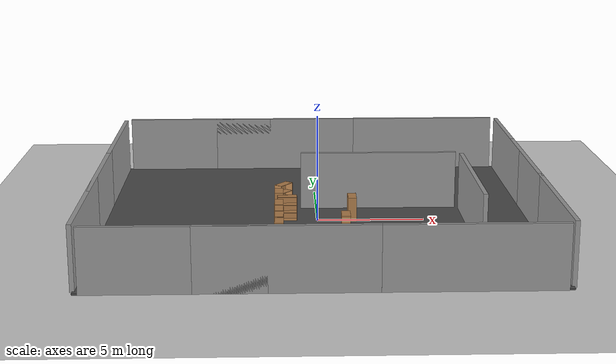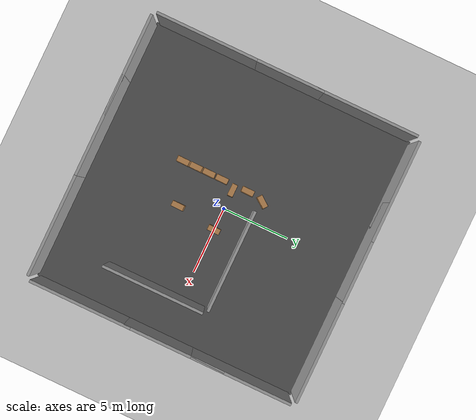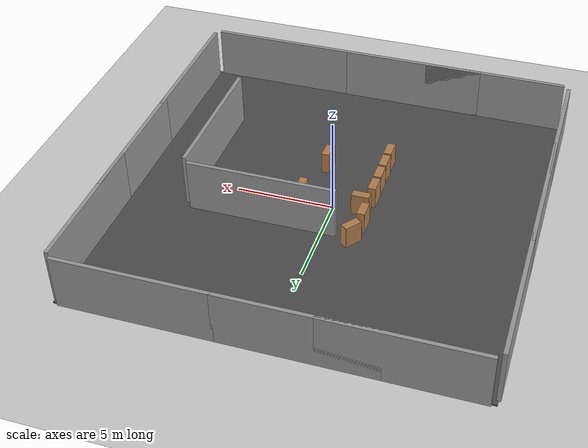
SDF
<sdf version="1.7">
 <world name="default">
  <light name="sun" type="directional">
   <pose>0 0 10 0 -0 0</pose>
   <diffuse>0.8 0.8 0.8 1</diffuse>
   <specular>0.2 0.2 0.2 1</specular>
   <attenuation>
    <range>1000</range>
    <constant>0.9</constant>
    <linear>0.01</linear>
    <quadratic>0.001</quadratic>
   </attenuation>
   <direction>-0.5 0.1 -0.9</direction>
   <spot><inner_angle>0</inner_angle><outer_angle>0</outer_angle><falloff>0</falloff></spot>
  </light>
  <model name="ground_plane">
   <static>1</static>
   <link name="link">
    <collision name="collision">
     <geometry><plane><normal>0 0 1</normal><size>100 100</size></plane></geometry>
     <surface><friction><ode><mu>100</mu><mu2>50</mu2></ode></friction></surface>
    </collision>
    <visual name="visual">
     <cast_shadows>0</cast_shadows>
     <geometry><plane><normal>0 0 1</normal><size>100 100</size></plane></geometry>
     <material>
      <script><uri>file://media/materials/scripts/gazebo.material</uri><name>Gazebo/Grey</name></script>
     </material>
    </visual>
   </link>
  </model>
  <gravity>0 0 -9.8</gravity>
  <magnetic_field>6e-06 2.3e-05 -4.2e-05</magnetic_field>
  <atmosphere type="adiabatic"/>
  <physics name="default_physics" default="0" type="ode">
   <max_step_size>0.001</max_step_size>
   <real_time_factor>1</real_time_factor>
   <real_time_update_rate>1000</real_time_update_rate>
  </physics>
  <scene><ambient>0.4 0.4 0.4 1</ambient><background>0.7 0.7 0.7 1</background><shadows>1</shadows></scene>
  <audio><device>default</device></audio>
  <spherical_coordinates>
   <surface_model>EARTH_WGS84</surface_model>
   <latitude_deg>47.8406</latitude_deg>
   <longitude_deg>10.6199</longitude_deg>
   <elevation>740</elevation>
   <heading_deg>180</heading_deg>
  </spherical_coordinates>
  <model name="bookshelf">
   <static>1</static>
   <link name="link">
    <inertial><mass>1</mass></inertial>
    <collision name="back">
     <pose>0 0.005 0.6 0 -0 0</pose>
     <geometry><box><size>0.9 0.01 1.2</size></box></geometry>
    </collision>
    <visual name="visual1">
     <pose>0 0.005 0.6 0 -0 0</pose>
     <geometry><box><size>0.9 0.01 1.2</size></box></geometry>
     <material>
      <script><uri>file://media/materials/scripts/gazebo.material</uri><name>Gazebo/Wood</name></script>
     </material>
    </visual>
    <collision name="left_side">
     <pose>0.45 -0.195 0.6 0 -0 0</pose>
     <geometry><box><size>0.02 0.4 1.2</size></box></geometry>
    </collision>
    <visual name="visual2">
     <pose>0.45 -0.195 0.6 0 -0 0</pose>
     <geometry><box><size>0.02 0.4 1.2</size></box></geometry>
     <material>
      <script><uri>file://media/materials/scripts/gazebo.material</uri><name>Gazebo/Wood</name></script>
     </material>
    </visual>
    <collision name="right_side">
     <pose>-0.45 -0.195 0.6 0 -0 0</pose>
     <geometry><box><size>0.02 0.4 1.2</size></box></geometry>
    </collision>
    <visual name="visual3">
     <pose>-0.45 -0.195 0.6 0 -0 0</pose>
     <geometry><box><size>0.02 0.4 1.2</size></box></geometry>
     <material>
      <script><uri>file://media/materials/scripts/gazebo.material</uri><name>Gazebo/Wood</name></script>
     </material>
    </visual>
    <collision name="bottom">
     <pose>0 -0.195 0.03 0 -0 0</pose>
     <geometry><box><size>0.88 0.4 0.06</size></box></geometry>
    </collision>
    <visual name="visual4">
     <pose>0 -0.195 0.03 0 -0 0</pose>
     <geometry><box><size>0.88 0.4 0.06</size></box></geometry>
     <material>
      <script><uri>file://media/materials/scripts/gazebo.material</uri><name>Gazebo/Wood</name></script>
     </material>
    </visual>
    <collision name="top">
     <pose>0 -0.195 1.19 0 -0 0</pose>
     <geometry><box><size>0.88 0.4 0.02</size></box></geometry>
    </collision>
    <visual name="visual5">
     <pose>0 -0.195 1.19 0 -0 0</pose>
     <geometry><box><size>0.88 0.4 0.02</size></box></geometry>
     <material>
      <script><uri>file://media/materials/scripts/gazebo.material</uri><name>Gazebo/Wood</name></script>
     </material>
    </visual>
    <collision name="low_shelf">
     <pose>0 -0.195 0.43 0 -0 0</pose>
     <geometry><box><size>0.88 0.4 0.02</size></box></geometry>
    </collision>
    <visual name="visual6">
     <pose>0 -0.195 0.43 0 -0 0</pose>
     <geometry><box><size>0.88 0.4 0.02</size></box></geometry>
     <material>
      <script><uri>file://media/materials/scripts/gazebo.material</uri><name>Gazebo/Wood</name></script>
     </material>
    </visual>
    <collision name="high_shelf">
     <pose>0 -0.195 0.8 0 -0 0</pose>
     <geometry><box><size>0.88 0.4 0.02</size></box></geometry>
    </collision>
    <visual name="visual7">
     <pose>0 -0.195 0.8 0 -0 0</pose>
     <geometry><box><size>0.88 0.4 0.02</size></box></geometry>
     <material>
      <script><uri>file://media/materials/scripts/gazebo.material</uri><name>Gazebo/Wood</name></script>
     </material>
    </visual>
   </link>
   <pose>-1.41887 0.189391 0 0 -0 0</pose>
  </model>
  <model name="bookshelf_clone">
   <static>1</static>
   <link name="link">
    <inertial><mass>1</mass></inertial>
    <collision name="back">
     <pose>0 0.005 0.6 0 -0 0</pose>
     <geometry><box><size>0.9 0.01 1.2</size></box></geometry>
    </collision>
    <visual name="visual1">
     <pose>0 0.005 0.6 0 -0 0</pose>
     <geometry><box><size>0.9 0.01 1.2</size></box></geometry>
     <material>
      <script><uri>file://media/materials/scripts/gazebo.material</uri><name>Gazebo/Wood</name></script>
     </material>
    </visual>
    <collision name="left_side">
     <pose>0.45 -0.195 0.6 0 -0 0</pose>
     <geometry><box><size>0.02 0.4 1.2</size></box></geometry>
    </collision>
    <visual name="visual2">
     <pose>0.45 -0.195 0.6 0 -0 0</pose>
     <geometry><box><size>0.02 0.4 1.2</size></box></geometry>
     <material>
      <script><uri>file://media/materials/scripts/gazebo.material</uri><name>Gazebo/Wood</name></script>
     </material>
    </visual>
    <collision name="right_side">
     <pose>-0.45 -0.195 0.6 0 -0 0</pose>
     <geometry><box><size>0.02 0.4 1.2</size></box></geometry>
    </collision>
    <visual name="visual3">
     <pose>-0.45 -0.195 0.6 0 -0 0</pose>
     <geometry><box><size>0.02 0.4 1.2</size></box></geometry>
     <material>
      <script><uri>file://media/materials/scripts/gazebo.material</uri><name>Gazebo/Wood</name></script>
     </material>
    </visual>
    <collision name="bottom">
     <pose>0 -0.195 0.03 0 -0 0</pose>
     <geometry><box><size>0.88 0.4 0.06</size></box></geometry>
    </collision>
    <visual name="visual4">
     <pose>0 -0.195 0.03 0 -0 0</pose>
     <geometry><box><size>0.88 0.4 0.06</size></box></geometry>
     <material>
      <script><uri>file://media/materials/scripts/gazebo.material</uri><name>Gazebo/Wood</name></script>
     </material>
    </visual>
    <collision name="top">
     <pose>0 -0.195 1.19 0 -0 0</pose>
     <geometry><box><size>0.88 0.4 0.02</size></box></geometry>
    </collision>
    <visual name="visual5">
     <pose>0 -0.195 1.19 0 -0 0</pose>
     <geometry><box><size>0.88 0.4 0.02</size></box></geometry>
     <material>
      <script><uri>file://media/materials/scripts/gazebo.material</uri><name>Gazebo/Wood</name></script>
     </material>
    </visual>
    <collision name="low_shelf">
     <pose>0 -0.195 0.43 0 -0 0</pose>
     <geometry><box><size>0.88 0.4 0.02</size></box></geometry>
    </collision>
    <visual name="visual6">
     <pose>0 -0.195 0.43 0 -0 0</pose>
     <geometry><box><size>0.88 0.4 0.02</size></box></geometry>
     <material>
      <script><uri>file://media/materials/scripts/gazebo.material</uri><name>Gazebo/Wood</name></script>
     </material>
    </visual>
    <collision name="high_shelf">
     <pose>0 -0.195 0.8 0 -0 0</pose>
     <geometry><box><size>0.88 0.4 0.02</size></box></geometry>
    </collision>
    <visual name="visual7">
     <pose>0 -0.195 0.8 0 -0 0</pose>
     <geometry><box><size>0.88 0.4 0.02</size></box></geometry>
     <material>
      <script><uri>file://media/materials/scripts/gazebo.material</uri><name>Gazebo/Wood</name></script>
     </material>
    </visual>
   </link>
   <pose>-2 -1 0 0 -0 1.55933</pose>
  </model>
  <model name="bookshelf_clone_0">
   <static>1</static>
   <link name="link">
    <inertial><mass>1</mass></inertial>
    <collision name="back">
     <pose>0 0.005 0.6 0 -0 0</pose>
     <geometry><box><size>0.9 0.01 1.2</size></box></geometry>
    </collision>
    <visual name="visual1">
     <pose>0 0.005 0.6 0 -0 0</pose>
     <geometry><box><size>0.9 0.01 1.2</size></box></geometry>
     <material>
      <script><uri>file://media/materials/scripts/gazebo.material</uri><name>Gazebo/Wood</name></script>
     </material>
    </visual>
    <collision name="left_side">
     <pose>0.45 -0.195 0.6 0 -0 0</pose>
     <geometry><box><size>0.02 0.4 1.2</size></box></geometry>
    </collision>
    <visual name="visual2">
     <pose>0.45 -0.195 0.6 0 -0 0</pose>
     <geometry><box><size>0.02 0.4 1.2</size></box></geometry>
     <material>
      <script><uri>file://media/materials/scripts/gazebo.material</uri><name>Gazebo/Wood</name></script>
     </material>
    </visual>
    <collision name="right_side">
     <pose>-0.45 -0.195 0.6 0 -0 0</pose>
     <geometry><box><size>0.02 0.4 1.2</size></box></geometry>
    </collision>
    <visual name="visual3">
     <pose>-0.45 -0.195 0.6 0 -0 0</pose>
     <geometry><box><size>0.02 0.4 1.2</size></box></geometry>
     <material>
      <script><uri>file://media/materials/scripts/gazebo.material</uri><name>Gazebo/Wood</name></script>
     </material>
    </visual>
    <collision name="bottom">
     <pose>0 -0.195 0.03 0 -0 0</pose>
     <geometry><box><size>0.88 0.4 0.06</size></box></geometry>
    </collision>
    <visual name="visual4">
     <pose>0 -0.195 0.03 0 -0 0</pose>
     <geometry><box><size>0.88 0.4 0.06</size></box></geometry>
     <material>
      <script><uri>file://media/materials/scripts/gazebo.material</uri><name>Gazebo/Wood</name></script>
     </material>
    </visual>
    <collision name="top">
     <pose>0 -0.195 1.19 0 -0 0</pose>
     <geometry><box><size>0.88 0.4 0.02</size></box></geometry>
    </collision>
    <visual name="visual5">
     <pose>0 -0.195 1.19 0 -0 0</pose>
     <geometry><box><size>0.88 0.4 0.02</size></box></geometry>
     <material>
      <script><uri>file://media/materials/scripts/gazebo.material</uri><name>Gazebo/Wood</name></script>
     </material>
    </visual>
    <collision name="low_shelf">
     <pose>0 -0.195 0.43 0 -0 0</pose>
     <geometry><box><size>0.88 0.4 0.02</size></box></geometry>
    </collision>
    <visual name="visual6">
     <pose>0 -0.195 0.43 0 -0 0</pose>
     <geometry><box><size>0.88 0.4 0.02</size></box></geometry>
     <material>
      <script><uri>file://media/materials/scripts/gazebo.material</uri><name>Gazebo/Wood</name></script>
     </material>
    </visual>
    <collision name="high_shelf">
     <pose>0 -0.195 0.8 0 -0 0</pose>
     <geometry><box><size>0.88 0.4 0.02</size></box></geometry>
    </collision>
    <visual name="visual7">
     <pose>0 -0.195 0.8 0 -0 0</pose>
     <geometry><box><size>0.88 0.4 0.02</size></box></geometry>
     <material>
      <script><uri>file://media/materials/scripts/gazebo.material</uri><name>Gazebo/Wood</name></script>
     </material>
    </visual>
   </link>
   <pose>-2 -2 0 0 -0 1.55933</pose>
  </model>
  <model name="bookshelf_clone_1">
   <static>1</static>
   <link name="link">
    <inertial><mass>1</mass></inertial>
    <collision name="back">
     <pose>0 0.005 0.6 0 -0 0</pose>
     <geometry><box><size>0.9 0.01 1.2</size></box></geometry>
    </collision>
    <visual name="visual1">
     <pose>0 0.005 0.6 0 -0 0</pose>
     <geometry><box><size>0.9 0.01 1.2</size></box></geometry>
     <material>
      <script><uri>file://media/materials/scripts/gazebo.material</uri><name>Gazebo/Wood</name></script>
     </material>
    </visual>
    <collision name="left_side">
     <pose>0.45 -0.195 0.6 0 -0 0</pose>
     <geometry><box><size>0.02 0.4 1.2</size></box></geometry>
    </collision>
    <visual name="visual2">
     <pose>0.45 -0.195 0.6 0 -0 0</pose>
     <geometry><box><size>0.02 0.4 1.2</size></box></geometry>
     <material>
      <script><uri>file://media/materials/scripts/gazebo.material</uri><name>Gazebo/Wood</name></script>
     </material>
    </visual>
    <collision name="right_side">
     <pose>-0.45 -0.195 0.6 0 -0 0</pose>
     <geometry><box><size>0.02 0.4 1.2</size></box></geometry>
    </collision>
    <visual name="visual3">
     <pose>-0.45 -0.195 0.6 0 -0 0</pose>
     <geometry><box><size>0.02 0.4 1.2</size></box></geometry>
     <material>
      <script><uri>file://media/materials/scripts/gazebo.material</uri><name>Gazebo/Wood</name></script>
     </material>
    </visual>
    <collision name="bottom">
     <pose>0 -0.195 0.03 0 -0 0</pose>
     <geometry><box><size>0.88 0.4 0.06</size></box></geometry>
    </collision>
    <visual name="visual4">
     <pose>0 -0.195 0.03 0 -0 0</pose>
     <geometry><box><size>0.88 0.4 0.06</size></box></geometry>
     <material>
      <script><uri>file://media/materials/scripts/gazebo.material</uri><name>Gazebo/Wood</name></script>
     </material>
    </visual>
    <collision name="top">
     <pose>0 -0.195 1.19 0 -0 0</pose>
     <geometry><box><size>0.88 0.4 0.02</size></box></geometry>
    </collision>
    <visual name="visual5">
     <pose>0 -0.195 1.19 0 -0 0</pose>
     <geometry><box><size>0.88 0.4 0.02</size></box></geometry>
     <material>
      <script><uri>file://media/materials/scripts/gazebo.material</uri><name>Gazebo/Wood</name></script>
     </material>
    </visual>
    <collision name="low_shelf">
     <pose>0 -0.195 0.43 0 -0 0</pose>
     <geometry><box><size>0.88 0.4 0.02</size></box></geometry>
    </collision>
    <visual name="visual6">
     <pose>0 -0.195 0.43 0 -0 0</pose>
     <geometry><box><size>0.88 0.4 0.02</size></box></geometry>
     <material>
      <script><uri>file://media/materials/scripts/gazebo.material</uri><name>Gazebo/Wood</name></script>
     </material>
    </visual>
    <collision name="high_shelf">
     <pose>0 -0.195 0.8 0 -0 0</pose>
     <geometry><box><size>0.88 0.4 0.02</size></box></geometry>
    </collision>
    <visual name="visual7">
     <pose>0 -0.195 0.8 0 -0 0</pose>
     <geometry><box><size>0.88 0.4 0.02</size></box></geometry>
     <material>
      <script><uri>file://media/materials/scripts/gazebo.material</uri><name>Gazebo/Wood</name></script>
     </material>
    </visual>
   </link>
   <pose>-2 -3 0 0 -0 1.55933</pose>
  </model>
  <model name="bookshelf_clone_2">
   <static>1</static>
   <link name="link">
    <inertial><mass>1</mass></inertial>
    <collision name="back">
     <pose>0 0.005 0.6 0 -0 0</pose>
     <geometry><box><size>0.9 0.01 1.2</size></box></geometry>
    </collision>
    <visual name="visual1">
     <pose>0 0.005 0.6 0 -0 0</pose>
     <geometry><box><size>0.9 0.01 1.2</size></box></geometry>
     <material>
      <script><uri>file://media/materials/scripts/gazebo.material</uri><name>Gazebo/Wood</name></script>
     </material>
    </visual>
    <collision name="left_side">
     <pose>0.45 -0.195 0.6 0 -0 0</pose>
     <geometry><box><size>0.02 0.4 1.2</size></box></geometry>
    </collision>
    <visual name="visual2">
     <pose>0.45 -0.195 0.6 0 -0 0</pose>
     <geometry><box><size>0.02 0.4 1.2</size></box></geometry>
     <material>
      <script><uri>file://media/materials/scripts/gazebo.material</uri><name>Gazebo/Wood</name></script>
     </material>
    </visual>
    <collision name="right_side">
     <pose>-0.45 -0.195 0.6 0 -0 0</pose>
     <geometry><box><size>0.02 0.4 1.2</size></box></geometry>
    </collision>
    <visual name="visual3">
     <pose>-0.45 -0.195 0.6 0 -0 0</pose>
     <geometry><box><size>0.02 0.4 1.2</size></box></geometry>
     <material>
      <script><uri>file://media/materials/scripts/gazebo.material</uri><name>Gazebo/Wood</name></script>
     </material>
    </visual>
    <collision name="bottom">
     <pose>0 -0.195 0.03 0 -0 0</pose>
     <geometry><box><size>0.88 0.4 0.06</size></box></geometry>
    </collision>
    <visual name="visual4">
     <pose>0 -0.195 0.03 0 -0 0</pose>
     <geometry><box><size>0.88 0.4 0.06</size></box></geometry>
     <material>
      <script><uri>file://media/materials/scripts/gazebo.material</uri><name>Gazebo/Wood</name></script>
     </material>
    </visual>
    <collision name="top">
     <pose>0 -0.195 1.19 0 -0 0</pose>
     <geometry><box><size>0.88 0.4 0.02</size></box></geometry>
    </collision>
    <visual name="visual5">
     <pose>0 -0.195 1.19 0 -0 0</pose>
     <geometry><box><size>0.88 0.4 0.02</size></box></geometry>
     <material>
      <script><uri>file://media/materials/scripts/gazebo.material</uri><name>Gazebo/Wood</name></script>
     </material>
    </visual>
    <collision name="low_shelf">
     <pose>0 -0.195 0.43 0 -0 0</pose>
     <geometry><box><size>0.88 0.4 0.02</size></box></geometry>
    </collision>
    <visual name="visual6">
     <pose>0 -0.195 0.43 0 -0 0</pose>
     <geometry><box><size>0.88 0.4 0.02</size></box></geometry>
     <material>
      <script><uri>file://media/materials/scripts/gazebo.material</uri><name>Gazebo/Wood</name></script>
     </material>
    </visual>
    <collision name="high_shelf">
     <pose>0 -0.195 0.8 0 -0 0</pose>
     <geometry><box><size>0.88 0.4 0.02</size></box></geometry>
    </collision>
    <visual name="visual7">
     <pose>0 -0.195 0.8 0 -0 0</pose>
     <geometry><box><size>0.88 0.4 0.02</size></box></geometry>
     <material>
      <script><uri>file://media/materials/scripts/gazebo.material</uri><name>Gazebo/Wood</name></script>
     </material>
    </visual>
   </link>
   <pose>1.44053 0 0 0 -0 1.55933</pose>
  </model>
  <model name="bookshelf_clone_4">
   <static>1</static>
   <link name="link">
    <inertial><mass>1</mass></inertial>
    <collision name="back">
     <pose>0 0.005 0.6 0 -0 0</pose>
     <geometry><box><size>0.9 0.01 1.2</size></box></geometry>
    </collision>
    <visual name="visual1">
     <pose>0 0.005 0.6 0 -0 0</pose>
     <geometry><box><size>0.9 0.01 1.2</size></box></geometry>
     <material>
      <script><uri>file://media/materials/scripts/gazebo.material</uri><name>Gazebo/Wood</name></script>
     </material>
    </visual>
    <collision name="left_side">
     <pose>0.45 -0.195 0.6 0 -0 0</pose>
     <geometry><box><size>0.02 0.4 1.2</size></box></geometry>
    </collision>
    <visual name="visual2">
     <pose>0.45 -0.195 0.6 0 -0 0</pose>
     <geometry><box><size>0.02 0.4 1.2</size></box></geometry>
     <material>
      <script><uri>file://media/materials/scripts/gazebo.material</uri><name>Gazebo/Wood</name></script>
     </material>
    </visual>
    <collision name="right_side">
     <pose>-0.45 -0.195 0.6 0 -0 0</pose>
     <geometry><box><size>0.02 0.4 1.2</size></box></geometry>
    </collision>
    <visual name="visual3">
     <pose>-0.45 -0.195 0.6 0 -0 0</pose>
     <geometry><box><size>0.02 0.4 1.2</size></box></geometry>
     <material>
      <script><uri>file://media/materials/scripts/gazebo.material</uri><name>Gazebo/Wood</name></script>
     </material>
    </visual>
    <collision name="bottom">
     <pose>0 -0.195 0.03 0 -0 0</pose>
     <geometry><box><size>0.88 0.4 0.06</size></box></geometry>
    </collision>
    <visual name="visual4">
     <pose>0 -0.195 0.03 0 -0 0</pose>
     <geometry><box><size>0.88 0.4 0.06</size></box></geometry>
     <material>
      <script><uri>file://media/materials/scripts/gazebo.material</uri><name>Gazebo/Wood</name></script>
     </material>
    </visual>
    <collision name="top">
     <pose>0 -0.195 1.19 0 -0 0</pose>
     <geometry><box><size>0.88 0.4 0.02</size></box></geometry>
    </collision>
    <visual name="visual5">
     <pose>0 -0.195 1.19 0 -0 0</pose>
     <geometry><box><size>0.88 0.4 0.02</size></box></geometry>
     <material>
      <script><uri>file://media/materials/scripts/gazebo.material</uri><name>Gazebo/Wood</name></script>
     </material>
    </visual>
    <collision name="low_shelf">
     <pose>0 -0.195 0.43 0 -0 0</pose>
     <geometry><box><size>0.88 0.4 0.02</size></box></geometry>
    </collision>
    <visual name="visual6">
     <pose>0 -0.195 0.43 0 -0 0</pose>
     <geometry><box><size>0.88 0.4 0.02</size></box></geometry>
     <material>
      <script><uri>file://media/materials/scripts/gazebo.material</uri><name>Gazebo/Wood</name></script>
     </material>
    </visual>
    <collision name="high_shelf">
     <pose>0 -0.195 0.8 0 -0 0</pose>
     <geometry><box><size>0.88 0.4 0.02</size></box></geometry>
    </collision>
    <visual name="visual7">
     <pose>0 -0.195 0.8 0 -0 0</pose>
     <geometry><box><size>0.88 0.4 0.02</size></box></geometry>
     <material>
      <script><uri>file://media/materials/scripts/gazebo.material</uri><name>Gazebo/Wood</name></script>
     </material>
    </visual>
   </link>
   <pose>1 -3 0 0 -0 1.55933</pose>
  </model>
  <model name="bookshelf_clone_1_clone">
   <static>1</static>
   <link name="link">
    <inertial><mass>1</mass></inertial>
    <collision name="back">
     <pose>0 0.005 0.6 0 -0 0</pose>
     <geometry><box><size>0.9 0.01 1.2</size></box></geometry>
    </collision>
    <visual name="visual1">
     <pose>0 0.005 0.6 0 -0 0</pose>
     <geometry><box><size>0.9 0.01 1.2</size></box></geometry>
     <material>
      <script><uri>file://media/materials/scripts/gazebo.material</uri><name>Gazebo/Wood</name></script>
     </material>
    </visual>
    <collision name="left_side">
     <pose>0.45 -0.195 0.6 0 -0 0</pose>
     <geometry><box><size>0.02 0.4 1.2</size></box></geometry>
    </collision>
    <visual name="visual2">
     <pose>0.45 -0.195 0.6 0 -0 0</pose>
     <geometry><box><size>0.02 0.4 1.2</size></box></geometry>
     <material>
      <script><uri>file://media/materials/scripts/gazebo.material</uri><name>Gazebo/Wood</name></script>
     </material>
    </visual>
    <collision name="right_side">
     <pose>-0.45 -0.195 0.6 0 -0 0</pose>
     <geometry><box><size>0.02 0.4 1.2</size></box></geometry>
    </collision>
    <visual name="visual3">
     <pose>-0.45 -0.195 0.6 0 -0 0</pose>
     <geometry><box><size>0.02 0.4 1.2</size></box></geometry>
     <material>
      <script><uri>file://media/materials/scripts/gazebo.material</uri><name>Gazebo/Wood</name></script>
     </material>
    </visual>
    <collision name="bottom">
     <pose>0 -0.195 0.03 0 -0 0</pose>
     <geometry><box><size>0.88 0.4 0.06</size></box></geometry>
    </collision>
    <visual name="visual4">
     <pose>0 -0.195 0.03 0 -0 0</pose>
     <geometry><box><size>0.88 0.4 0.06</size></box></geometry>
     <material>
      <script><uri>file://media/materials/scripts/gazebo.material</uri><name>Gazebo/Wood</name></script>
     </material>
    </visual>
    <collision name="top">
     <pose>0 -0.195 1.19 0 -0 0</pose>
     <geometry><box><size>0.88 0.4 0.02</size></box></geometry>
    </collision>
    <visual name="visual5">
     <pose>0 -0.195 1.19 0 -0 0</pose>
     <geometry><box><size>0.88 0.4 0.02</size></box></geometry>
     <material>
      <script><uri>file://media/materials/scripts/gazebo.material</uri><name>Gazebo/Wood</name></script>
     </material>
    </visual>
    <collision name="low_shelf">
     <pose>0 -0.195 0.43 0 -0 0</pose>
     <geometry><box><size>0.88 0.4 0.02</size></box></geometry>
    </collision>
    <visual name="visual6">
     <pose>0 -0.195 0.43 0 -0 0</pose>
     <geometry><box><size>0.88 0.4 0.02</size></box></geometry>
     <material>
      <script><uri>file://media/materials/scripts/gazebo.material</uri><name>Gazebo/Wood</name></script>
     </material>
    </visual>
    <collision name="high_shelf">
     <pose>0 -0.195 0.8 0 -0 0</pose>
     <geometry><box><size>0.88 0.4 0.02</size></box></geometry>
    </collision>
    <visual name="visual7">
     <pose>0 -0.195 0.8 0 -0 0</pose>
     <geometry><box><size>0.88 0.4 0.02</size></box></geometry>
     <material>
      <script><uri>file://media/materials/scripts/gazebo.material</uri><name>Gazebo/Wood</name></script>
     </material>
    </visual>
   </link>
   <pose>-2 -4 0 0 -0 1.55933</pose>
  </model>
  <model name="bookshelf_clone_1_clone_0">
   <static>1</static>
   <link name="link">
    <inertial><mass>1</mass></inertial>
    <collision name="back">
     <pose>0 0.005 0.6 0 -0 0</pose>
     <geometry><box><size>0.9 0.01 1.2</size></box></geometry>
    </collision>
    <visual name="visual1">
     <pose>0 0.005 0.6 0 -0 0</pose>
     <geometry><box><size>0.9 0.01 1.2</size></box></geometry>
     <material>
      <script><uri>file://media/materials/scripts/gazebo.material</uri><name>Gazebo/Wood</name></script>
     </material>
    </visual>
    <collision name="left_side">
     <pose>0.45 -0.195 0.6 0 -0 0</pose>
     <geometry><box><size>0.02 0.4 1.2</size></box></geometry>
    </collision>
    <visual name="visual2">
     <pose>0.45 -0.195 0.6 0 -0 0</pose>
     <geometry><box><size>0.02 0.4 1.2</size></box></geometry>
     <material>
      <script><uri>file://media/materials/scripts/gazebo.material</uri><name>Gazebo/Wood</name></script>
     </material>
    </visual>
    <collision name="right_side">
     <pose>-0.45 -0.195 0.6 0 -0 0</pose>
     <geometry><box><size>0.02 0.4 1.2</size></box></geometry>
    </collision>
    <visual name="visual3">
     <pose>-0.45 -0.195 0.6 0 -0 0</pose>
     <geometry><box><size>0.02 0.4 1.2</size></box></geometry>
     <material>
      <script><uri>file://media/materials/scripts/gazebo.material</uri><name>Gazebo/Wood</name></script>
     </material>
    </visual>
    <collision name="bottom">
     <pose>0 -0.195 0.03 0 -0 0</pose>
     <geometry><box><size>0.88 0.4 0.06</size></box></geometry>
    </collision>
    <visual name="visual4">
     <pose>0 -0.195 0.03 0 -0 0</pose>
     <geometry><box><size>0.88 0.4 0.06</size></box></geometry>
     <material>
      <script><uri>file://media/materials/scripts/gazebo.material</uri><name>Gazebo/Wood</name></script>
     </material>
    </visual>
    <collision name="top">
     <pose>0 -0.195 1.19 0 -0 0</pose>
     <geometry><box><size>0.88 0.4 0.02</size></box></geometry>
    </collision>
    <visual name="visual5">
     <pose>0 -0.195 1.19 0 -0 0</pose>
     <geometry><box><size>0.88 0.4 0.02</size></box></geometry>
     <material>
      <script><uri>file://media/materials/scripts/gazebo.material</uri><name>Gazebo/Wood</name></script>
     </material>
    </visual>
    <collision name="low_shelf">
     <pose>0 -0.195 0.43 0 -0 0</pose>
     <geometry><box><size>0.88 0.4 0.02</size></box></geometry>
    </collision>
    <visual name="visual6">
     <pose>0 -0.195 0.43 0 -0 0</pose>
     <geometry><box><size>0.88 0.4 0.02</size></box></geometry>
     <material>
      <script><uri>file://media/materials/scripts/gazebo.material</uri><name>Gazebo/Wood</name></script>
     </material>
    </visual>
    <collision name="high_shelf">
     <pose>0 -0.195 0.8 0 -0 0</pose>
     <geometry><box><size>0.88 0.4 0.02</size></box></geometry>
    </collision>
    <visual name="visual7">
     <pose>0 -0.195 0.8 0 -0 0</pose>
     <geometry><box><size>0.88 0.4 0.02</size></box></geometry>
     <material>
      <script><uri>file://media/materials/scripts/gazebo.material</uri><name>Gazebo/Wood</name></script>
     </material>
    </visual>
   </link>
   <pose>-2 1 0 0 -0 1.55933</pose>
  </model>
  <model name="bookshelf_clone_1_clone_1">
   <static>1</static>
   <link name="link">
    <inertial><mass>1</mass></inertial>
    <collision name="back">
     <pose>0 0.005 0.6 0 -0 0</pose>
     <geometry><box><size>0.9 0.01 1.2</size></box></geometry>
    </collision>
    <visual name="visual1">
     <pose>0 0.005 0.6 0 -0 0</pose>
     <geometry><box><size>0.9 0.01 1.2</size></box></geometry>
     <material>
      <script><uri>file://media/materials/scripts/gazebo.material</uri><name>Gazebo/Wood</name></script>
     </material>
    </visual>
    <collision name="left_side">
     <pose>0.45 -0.195 0.6 0 -0 0</pose>
     <geometry><box><size>0.02 0.4 1.2</size></box></geometry>
    </collision>
    <visual name="visual2">
     <pose>0.45 -0.195 0.6 0 -0 0</pose>
     <geometry><box><size>0.02 0.4 1.2</size></box></geometry>
     <material>
      <script><uri>file://media/materials/scripts/gazebo.material</uri><name>Gazebo/Wood</name></script>
     </material>
    </visual>
    <collision name="right_side">
     <pose>-0.45 -0.195 0.6 0 -0 0</pose>
     <geometry><box><size>0.02 0.4 1.2</size></box></geometry>
    </collision>
    <visual name="visual3">
     <pose>-0.45 -0.195 0.6 0 -0 0</pose>
     <geometry><box><size>0.02 0.4 1.2</size></box></geometry>
     <material>
      <script><uri>file://media/materials/scripts/gazebo.material</uri><name>Gazebo/Wood</name></script>
     </material>
    </visual>
    <collision name="bottom">
     <pose>0 -0.195 0.03 0 -0 0</pose>
     <geometry><box><size>0.88 0.4 0.06</size></box></geometry>
    </collision>
    <visual name="visual4">
     <pose>0 -0.195 0.03 0 -0 0</pose>
     <geometry><box><size>0.88 0.4 0.06</size></box></geometry>
     <material>
      <script><uri>file://media/materials/scripts/gazebo.material</uri><name>Gazebo/Wood</name></script>
     </material>
    </visual>
    <collision name="top">
     <pose>0 -0.195 1.19 0 -0 0</pose>
     <geometry><box><size>0.88 0.4 0.02</size></box></geometry>
    </collision>
    <visual name="visual5">
     <pose>0 -0.195 1.19 0 -0 0</pose>
     <geometry><box><size>0.88 0.4 0.02</size></box></geometry>
     <material>
      <script><uri>file://media/materials/scripts/gazebo.material</uri><name>Gazebo/Wood</name></script>
     </material>
    </visual>
    <collision name="low_shelf">
     <pose>0 -0.195 0.43 0 -0 0</pose>
     <geometry><box><size>0.88 0.4 0.02</size></box></geometry>
    </collision>
    <visual name="visual6">
     <pose>0 -0.195 0.43 0 -0 0</pose>
     <geometry><box><size>0.88 0.4 0.02</size></box></geometry>
     <material>
      <script><uri>file://media/materials/scripts/gazebo.material</uri><name>Gazebo/Wood</name></script>
     </material>
    </visual>
    <collision name="high_shelf">
     <pose>0 -0.195 0.8 0 -0 0</pose>
     <geometry><box><size>0.88 0.4 0.02</size></box></geometry>
    </collision>
    <visual name="visual7">
     <pose>0 -0.195 0.8 0 -0 0</pose>
     <geometry><box><size>0.88 0.4 0.02</size></box></geometry>
     <material>
      <script><uri>file://media/materials/scripts/gazebo.material</uri><name>Gazebo/Wood</name></script>
     </material>
    </visual>
   </link>
   <pose>-1.73196 2.3534 0 0 -0 0.921911</pose>
  </model>
  <model name="grey_wall_0">
   <static>1</static>
   <link name="link">
    <pose>0 0 1.4 0 -0 0</pose>
    <collision name="collision"><geometry><box><size>7.5 0.2 2.8</size></box></geometry></collision>
    <visual name="visual">
     <cast_shadows>0</cast_shadows>
     <geometry><box><size>7.5 0.2 2.8</size></box></geometry>
     <material>
      <script>
       <uri>model://grey_wall/materials/scripts</uri>
       <uri>model://grey_wall/materials/textures</uri>
       <name>vrc/grey_wall</name>
      </script>
     </material>
    </visual>
   </link>
   <pose>3 2 0 0 -0 0</pose>
  </model>
  <model name="grey_wall_1">
   <static>1</static>
   <link name="link">
    <pose>0 0 1.4 0 -0 0</pose>
    <collision name="collision"><geometry><box><size>7.5 0.2 2.8</size></box></geometry></collision>
    <visual name="visual">
     <cast_shadows>0</cast_shadows>
     <geometry><box><size>7.5 0.2 2.8</size></box></geometry>
     <material>
      <script>
       <uri>model://grey_wall/materials/scripts</uri>
       <uri>model://grey_wall/materials/textures</uri>
       <name>vrc/grey_wall</name>
      </script>
     </material>
    </visual>
   </link>
   <pose>7 -2 0 0 0 -1.5708</pose>
  </model>
  <model name="grey_wall_2">
   <static>1</static>
   <link name="link">
    <pose>0 0 1.4 0 -0 0</pose>
    <collision name="collision"><geometry><box><size>7.5 0.2 2.8</size></box></geometry></collision>
    <visual name="visual">
     <cast_shadows>0</cast_shadows>
     <geometry><box><size>7.5 0.2 2.8</size></box></geometry>
     <material>
      <script>
       <uri>model://grey_wall/materials/scripts</uri>
       <uri>model://grey_wall/materials/textures</uri>
       <name>vrc/grey_wall</name>
      </script>
     </material>
    </visual>
   </link>
   <pose>6 -10 0 0 -0 0</pose>
  </model>
  <model name="grey_wall_1_clone">
   <static>1</static>
   <link name="link">
    <pose>0 0 1.4 0 -0 0</pose>
    <collision name="collision"><geometry><box><size>7.5 0.2 2.8</size></box></geometry></collision>
    <visual name="visual">
     <cast_shadows>0</cast_shadows>
     <geometry><box><size>7.5 0.2 2.8</size></box></geometry>
     <material>
      <script>
       <uri>model://grey_wall/materials/scripts</uri>
       <uri>model://grey_wall/materials/textures</uri>
       <name>vrc/grey_wall</name>
      </script>
     </material>
    </visual>
   </link>
   <pose>10 -6 0 0 0 -1.5708</pose>
  </model>
  <model name="grey_wall_1_clone_0">
   <static>1</static>
   <link name="link">
    <pose>0 0 1.4 0 -0 0</pose>
    <collision name="collision"><geometry><box><size>7.5 0.2 2.8</size></box></geometry></collision>
    <visual name="visual">
     <cast_shadows>0</cast_shadows>
     <geometry><box><size>7.5 0.2 2.8</size></box></geometry>
     <material>
      <script>
       <uri>model://grey_wall/materials/scripts</uri>
       <uri>model://grey_wall/materials/textures</uri>
       <name>vrc/grey_wall</name>
      </script>
     </material>
    </visual>
   </link>
   <pose>10 1 0 0 0 -1.5708</pose>
  </model>
  <model name="grey_wall_2_clone">
   <static>1</static>
   <link name="link">
    <pose>0 0 1.4 0 -0 0</pose>
    <collision name="collision"><geometry><box><size>7.5 0.2 2.8</size></box></geometry></collision>
    <visual name="visual">
     <cast_shadows>0</cast_shadows>
     <geometry><box><size>7.5 0.2 2.8</size></box></geometry>
     <material>
      <script>
       <uri>model://grey_wall/materials/scripts</uri>
       <uri>model://grey_wall/materials/textures</uri>
       <name>vrc/grey_wall</name>
      </script>
     </material>
    </visual>
   </link>
   <pose>-1.50047 -10 0 0 -0 0</pose>
  </model>
  <model name="grey_wall_1_clone_clone">
   <static>1</static>
   <link name="link">
    <pose>0 0 1.4 0 -0 0</pose>
    <collision name="collision"><geometry><box><size>7.5 0.2 2.8</size></box></geometry></collision>
    <visual name="visual">
     <cast_shadows>0</cast_shadows>
     <geometry><box><size>7.5 0.2 2.8</size></box></geometry>
     <material>
      <script>
       <uri>model://grey_wall/materials/scripts</uri>
       <uri>model://grey_wall/materials/textures</uri>
       <name>vrc/grey_wall</name>
      </script>
     </material>
    </visual>
   </link>
   <pose>10 6 0 0 0 -1.5708</pose>
  </model>
  <model name="grey_wall_2_clone_0">
   <static>1</static>
   <link name="link">
    <pose>0 0 1.4 0 -0 0</pose>
    <collision name="collision"><geometry><box><size>7.5 0.2 2.8</size></box></geometry></collision>
    <visual name="visual">
     <cast_shadows>0</cast_shadows>
     <geometry><box><size>7.5 0.2 2.8</size></box></geometry>
     <material>
      <script>
       <uri>model://grey_wall/materials/scripts</uri>
       <uri>model://grey_wall/materials/textures</uri>
       <name>vrc/grey_wall</name>
      </script>
     </material>
    </visual>
   </link>
   <pose>6 10 0 0 -0 0</pose>
  </model>
  <model name="grey_wall_2_clone_1">
   <static>1</static>
   <link name="link">
    <pose>0 0 1.4 0 -0 0</pose>
    <collision name="collision"><geometry><box><size>7.5 0.2 2.8</size></box></geometry></collision>
    <visual name="visual">
     <cast_shadows>0</cast_shadows>
     <geometry><box><size>7.5 0.2 2.8</size></box></geometry>
     <material>
      <script>
       <uri>model://grey_wall/materials/scripts</uri>
       <uri>model://grey_wall/materials/textures</uri>
       <name>vrc/grey_wall</name>
      </script>
     </material>
    </visual>
   </link>
   <pose>-1.40275 10 0 0 -0 0</pose>
  </model>
  <model name="grey_wall_1_clone_clone_0">
   <static>1</static>
   <link name="link">
    <pose>0 0 1.4 0 -0 0</pose>
    <collision name="collision"><geometry><box><size>7.5 0.2 2.8</size></box></geometry></collision>
    <visual name="visual">
     <cast_shadows>0</cast_shadows>
     <geometry><box><size>7.5 0.2 2.8</size></box></geometry>
     <material>
      <script>
       <uri>model://grey_wall/materials/scripts</uri>
       <uri>model://grey_wall/materials/textures</uri>
       <name>vrc/grey_wall</name>
      </script>
     </material>
    </visual>
   </link>
   <pose>-10 6 0 0 0 -1.5708</pose>
  </model>
  <model name="grey_wall_1_clone_clone_1">
   <static>1</static>
   <link name="link">
    <pose>0 0 1.4 0 -0 0</pose>
    <collision name="collision"><geometry><box><size>7.5 0.2 2.8</size></box></geometry></collision>
    <visual name="visual">
     <cast_shadows>0</cast_shadows>
     <geometry><box><size>7.5 0.2 2.8</size></box></geometry>
     <material>
      <script>
       <uri>model://grey_wall/materials/scripts</uri>
       <uri>model://grey_wall/materials/textures</uri>
       <name>vrc/grey_wall</name>
      </script>
     </material>
    </visual>
   </link>
   <pose>-10 -1 0 0 0 -1.5708</pose>
  </model>
  <model name="grey_wall_1_clone_clone_2">
   <static>1</static>
   <link name="link">
    <pose>0 0 1.4 0 -0 0</pose>
    <collision name="collision"><geometry><box><size>7.5 0.2 2.8</size></box></geometry></collision>
    <visual name="visual">
     <cast_shadows>0</cast_shadows>
     <geometry><box><size>7.5 0.2 2.8</size></box></geometry>
     <material>
      <script>
       <uri>model://grey_wall/materials/scripts</uri>
       <uri>model://grey_wall/materials/textures</uri>
       <name>vrc/grey_wall</name>
      </script>
     </material>
    </visual>
   </link>
   <pose>-10 -6 0 0 0 -1.5708</pose>
  </model>
  <model name="grey_wall">
   <static>1</static>
   <link name="link">
    <pose>0 0 1.4 0 -0 0</pose>
    <collision name="collision"><geometry><box><size>7.5 0.2 2.8</size></box></geometry></collision>
    <visual name="visual">
     <cast_shadows>0</cast_shadows>
     <geometry><box><size>7.5 0.2 2.8</size></box></geometry>
     <material>
      <script>
       <uri>model://grey_wall/materials/scripts</uri>
       <uri>model://grey_wall/materials/textures</uri>
       <name>vrc/grey_wall</name>
      </script>
     </material>
    </visual>
   </link>
   <pose>-6 -10 0 0 -0 0</pose>
  </model>
  <model name="grey_wall_2_clone_1_clone">
   <static>1</static>
   <link name="link">
    <pose>0 0 1.4 0 -0 0</pose>
    <collision name="collision"><geometry><box><size>7.5 0.2 2.8</size></box></geometry></collision>
    <visual name="visual">
     <cast_shadows>0</cast_shadows>
     <geometry><box><size>7.5 0.2 2.8</size></box></geometry>
     <material>
      <script>
       <uri>model://grey_wall/materials/scripts</uri>
       <uri>model://grey_wall/materials/textures</uri>
       <name>vrc/grey_wall</name>
      </script>
     </material>
    </visual>
   </link>
   <pose>-6 10 0 0 -0 0</pose>
  </model>
  <model name="asphalt_plane">
   <static>1</static>
   <link name="link">
    <collision name="collision"><geometry><box><size>20 20 0.1</size></box></geometry></collision>
    <visual name="visual">
     <cast_shadows>0</cast_shadows>
     <geometry><box><size>20 20 0.1</size></box></geometry>
     <material>
      <script>
       <uri>model://asphalt_plane/materials/scripts</uri>
       <uri>model://asphalt_plane/materials/textures</uri>
       <name>vrc/asphalt</name>
      </script>
     </material>
    </visual>
   </link>
  </model>
 </world>
</sdf>
